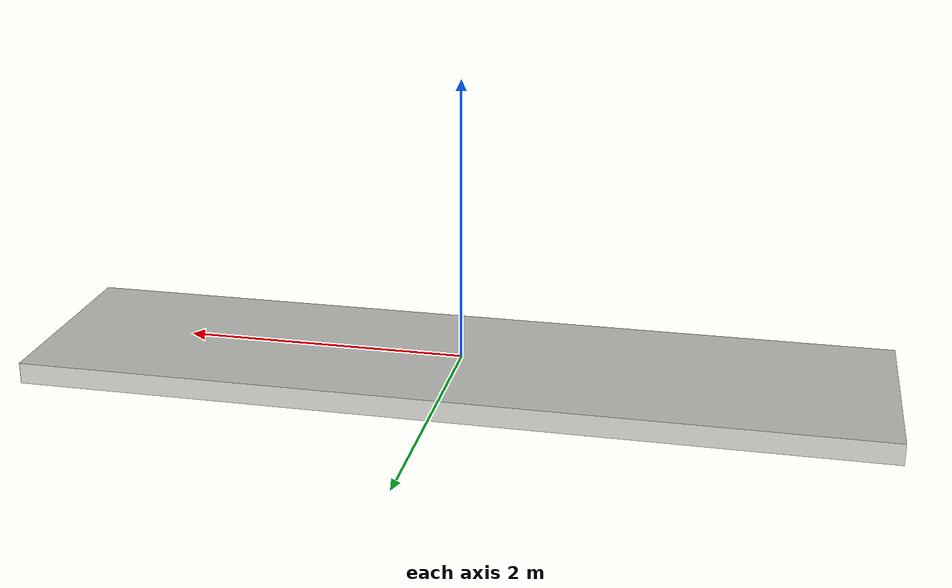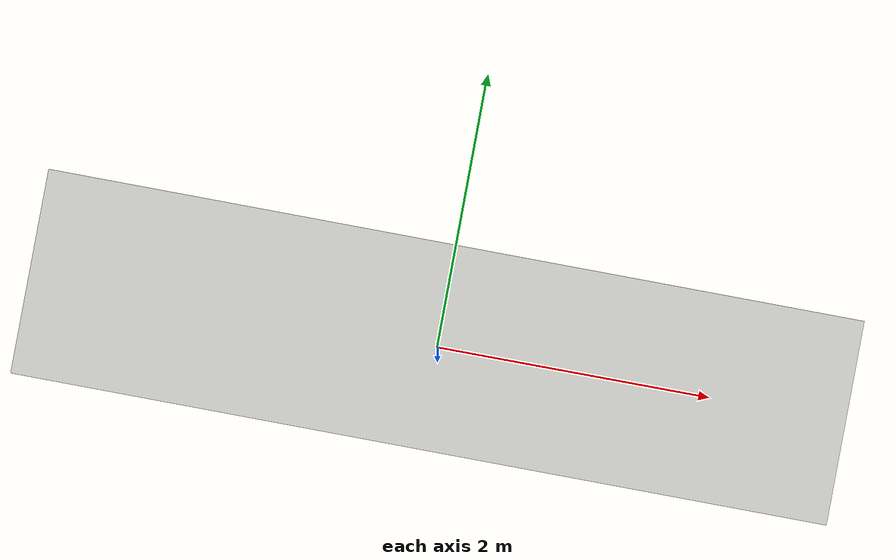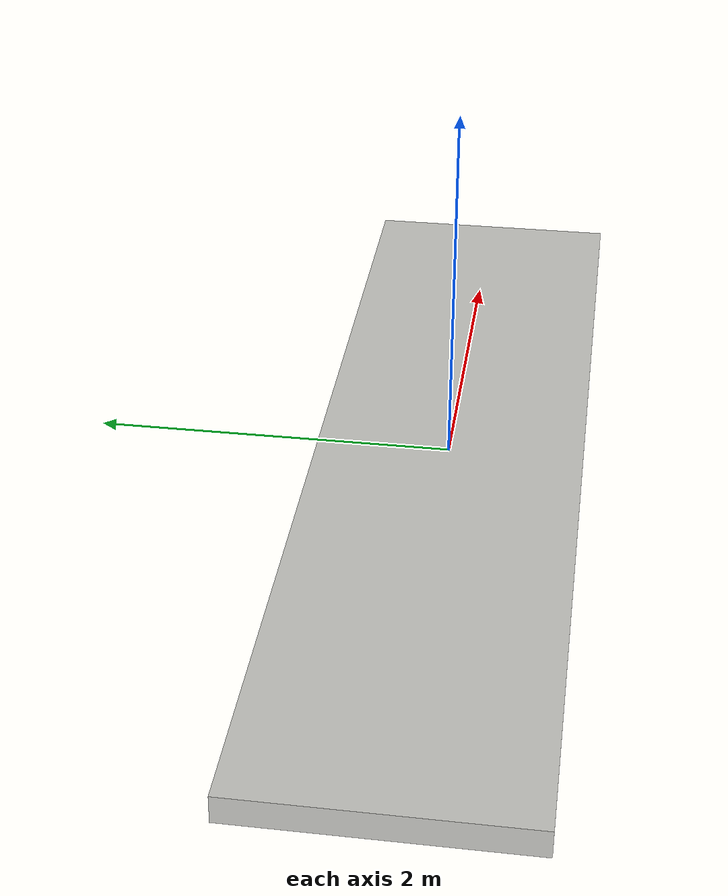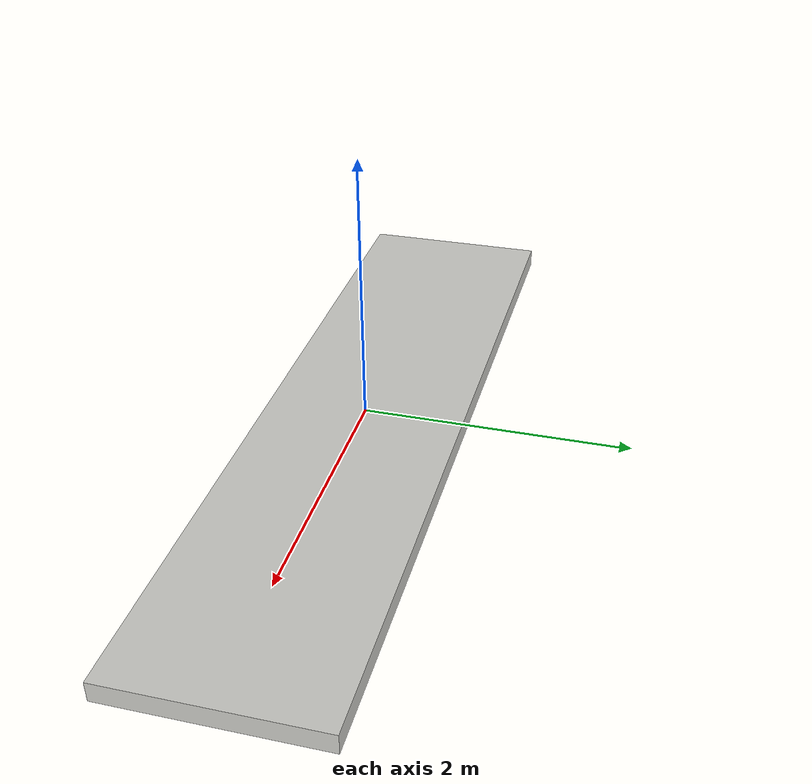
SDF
<?xml version='1.0'?>
<sdf version='1.6'>
  <model name='floor_6'>
    <pose frame=''>0 0 -0.076 1.57 0 0</pose>
    <link name='floor_6'>
      <collision name='floor_6_Collision'>
        <geometry>
          <box>
            <size>6 0.15 1.5</size>
          </box>
        </geometry>
        <pose frame=''>0 0 0 0 -0 0</pose>
      </collision>
      <visual name='floor_6_Visual'>
        <pose frame=''>0 0 0 0 -0 0</pose>
        <geometry>
          <box>
            <size>6 0.15 1.5</size>
          </box>
        </geometry>
        <material>
          <script>
            <uri>file://media/materials/scripts/gazebo.material</uri>
            <name>Gazebo/CeilingTiled</name>
          </script>
          <ambient>1 1 1 1</ambient>
        </material>
        <meta>
          <layer>0</layer>
        </meta>
      </visual>
      <pose frame=''>0 0 0 0 -0 0</pose>
    </link>
    <static>1</static>
  </model>
</sdf>
